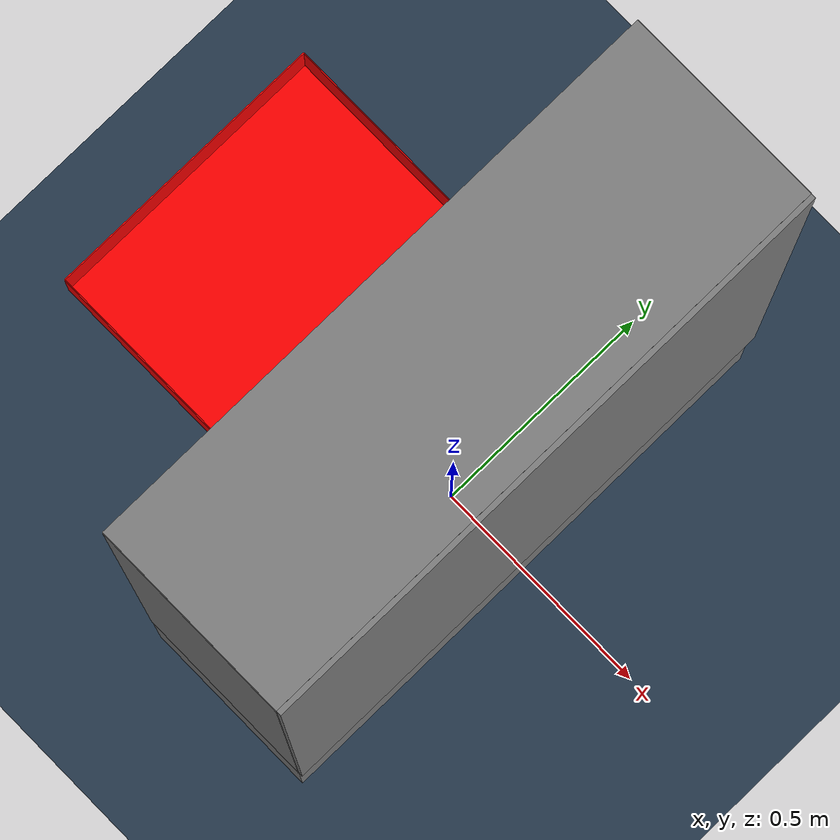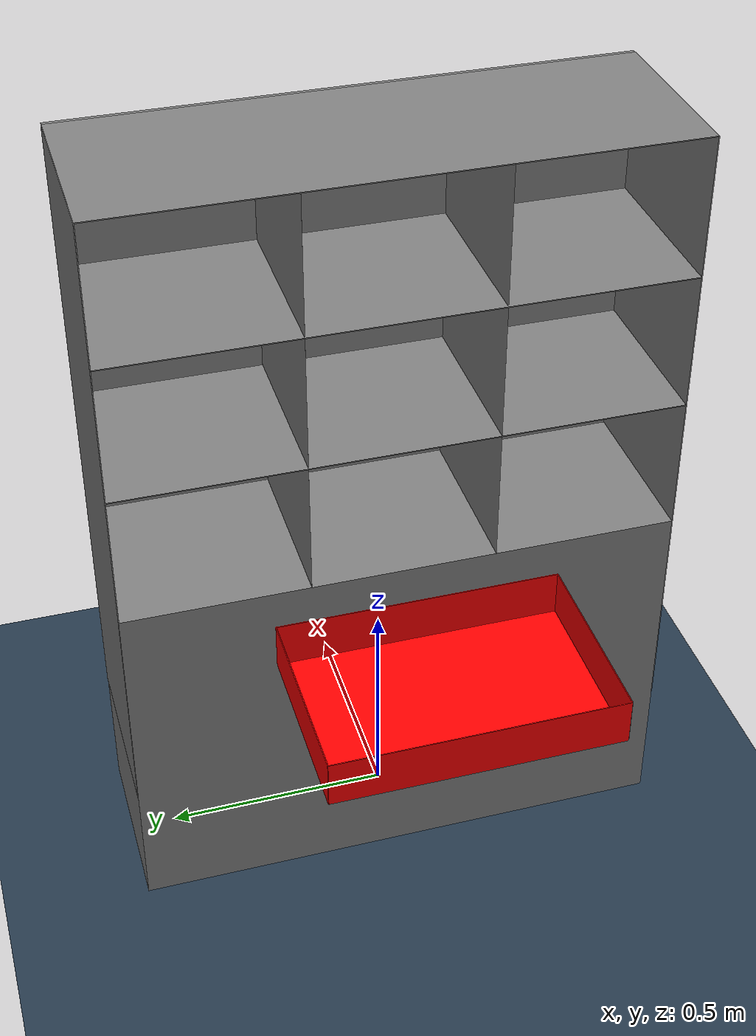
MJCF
<mujoco model="shelf_arena">
	<asset>
		<texture builtin="gradient" height="256" rgb1=".9 .9 1." rgb2=".2 .3 .4" type="skybox" width="256"/>
		<texture builtin="checker" height="512" name="texplane" rgb1=".2 .3 .4" rgb2=".1 0.15 0.2" type="2d" width="512"/>
		<material name="floorplane" reflectance="0.5" texrepeat="1 1" texture="texplane" texuniform="true"/>
	</asset>
	<worldbody>
		<geom condim="3" material="floorplane" name="floor" pos="0 0 0" size="3 3 .125" type="plane"/>
		<body name="shelf" pos="0 0 0.4">
			<body name="shelf0" pos="0 0 0">
				<geom pos="0 0 0" size="0.2 0.6 0.4" type="box" name="shelf0_collision" friction="1 0.005 0.0001"/>
				<geom pos="0 0 0" size="0.2 0.6 0.4" type="box" name="shelf0_visual" conaffinity="0" contype="0" group="1"/>
			</body>
			<body name="shelf1" pos="0 0 0.7">
				<geom pos="0 0 0" size="0.2 0.6 0.001" type="box" name="shelf1_collision" friction="1 0.005 0.0001"/>
				<geom pos="0 0 0" size="0.2 0.6 0.001" type="box" name="shelf1_visual" conaffinity="0" contype="0" group="1"/>
			</body>
			<body name="shelf2" pos="0 0 1">
				<geom pos="0 0 0" size="0.2 0.6 0.001" type="box" name="shelf2_collision" friction="1 0.005 0.0001"/>
				<geom pos="0 0 0" size="0.2 0.6 0.001" type="box" name="shelf2_visual" conaffinity="0" contype="0" group="1"/>
			</body>
			<body name="shelf3" pos="0 0 1.3">
				<geom pos="0 0 0" size="0.2 0.6 0.001" type="box" name="shelf3_collision" friction="1 0.005 0.0001"/>
				<geom pos="0 0 0" size="0.2 0.6 0.001" type="box" name="shelf3_visual" conaffinity="0" contype="0" group="1"/>
			</body>
			<body name="back" pos="0.2 0 0.6">
				<geom pos="0 0 0" size="0.01 0.6 0.7" type="box" name="back_collision" friction="1 0.005 0.0001"/>
				<geom pos="0 0 0" size="0.01 0.6 0.7" type="box" name="back_visual" conaffinity="0" contype="0" group="1"/>
			</body>
			<body name="lside" pos="0 0.6 0.6">
				<geom pos="0 0 0" size="0.2 0.001 0.7" type="box" name="lside_collision" friction="1 0.005 0.0001"/>
				<geom pos="0 0 0" size="0.2 0.001 0.7" type="box" name="lside_visual" conaffinity="0" contype="0" group="1"/>
			</body>
			<body name="partition1" pos="0 0.2 0.6">
				<geom pos="0 0 0" size="0.2 0.00001 0.7" type="box" name="partition1_collision" friction="1 0.005 0.0001"/>
				<geom pos="0 0 0" size="0.2 0.00001 0.7" type="box" name="partition1_visual" conaffinity="0" contype="0" group="1"/>
			</body>
			<body name="partition2" pos="0 -0.2 0.6">
				<geom pos="0 0 0" size="0.2 0.00001 0.7" type="box" name="partition2_collision" friction="1 0.005 0.0001"/>
				<geom pos="0 0 0" size="0.2 0.00001 0.7" type="box" name="partition2_visual" conaffinity="0" contype="0" group="1"/>
			</body>
			<body name="rside" pos="0 -0.6 0.6">
				<geom pos="0 0 0" size="0.2 0.001 0.7" type="box" name="rside_collision" friction="1 0.005 0.0001"/>
				<geom pos="0 0 0" size="0.2 0.001 0.7" type="box" name="rside_visual" conaffinity="0" contype="0" group="1"/>
			</body>
	    </body>
	    <body name="box" pos="-0.5 0 0.7">
	    	<geom pos="0 0 0" size="0.2 0.3 0.001" type="box" friction="1 0.005 0.0001" rgba="1 0 0 1"/>
			<geom pos="0 0 0" size="0.2 0.3 0.001"  type="box" conaffinity="0" contype="0" group="1" rgba="1 0 0 1"/>

	    	<geom pos="0 0.3 0.05" size="0.2 0.001 0.05" type="box" friction="1 0.005 0.0001" rgba="1 0 0 1"/>
	    	<geom pos="0 0.3 0.05" size="0.2 0.001 0.05" type="box" conaffinity="0" contype="0" group="1" rgba="1 0 0 1"/>

	    	<geom pos="0 -0.3 0.05" size="0.2 0.001 0.05" type="box" friction="1 0.005 0.0001" rgba="1 0 0 1"/>
	    	<geom pos="0 -0.3 0.05" size="0.2 0.001 0.05" type="box" conaffinity="0" contype="0" group="1" rgba="1 0 0 1"/>

	    	<geom pos="0.2 0 0.05" size="0.001 0.3 0.05" type="box" friction="1 0.005 0.0001" rgba="1 0 0 1"/>
	    	<geom pos="0.2 0 0.05" size="0.001 0.3 0.05" type="box" conaffinity="0" contype="0" group="1" rgba="1 0 0 1"/>

	    	<geom pos="-0.2 0 0.05" size="0.001 0.3 0.05" type="box" friction="1 0.005 0.0001" rgba="1 0 0 1"/>
	    	<geom pos="-0.2 0 0.05" size="0.001 0.3 0.05" type="box" conaffinity="0" contype="0" group="1" rgba="1 0 0 1"/>

	    </body>
		<light diffuse=".8 .8 .8" dir="0 -.15 -1" directional="false" pos="1 1 4.0" specular="0.3 0.3 0.3"/>
		<light diffuse=".8 .8 .8" dir="0 -.15 -1" directional="false" pos="-3. -3. 4.0" specular="0.3 0.3 0.3"/>

		<!-- frontview -->
		<camera mode="fixed" name="frontview" pos="1.6 0 1.45" quat="0.56 0.43 0.43 0.56"/>
		<!-- birdview -->
		<camera mode="fixed" name="birdview" pos="-0.2 0 3.0" quat="0.7071 0 0 0.7071"/>
		<!-- tabletop -->
		<camera mode="fixed" name="tabletop" pos="0.8 0 1.65" quat="0.653 0.271 0.271 0.653"/>
		<!-- firstperson -->
		<camera mode="fixed" name="firstperson" pos="-1.2 0.3 1.2" quat="-0.6123724370696698 -0.3535533882136519 0.35355338821365195 0.6123724370696697"/>

	</worldbody>
</mujoco>
